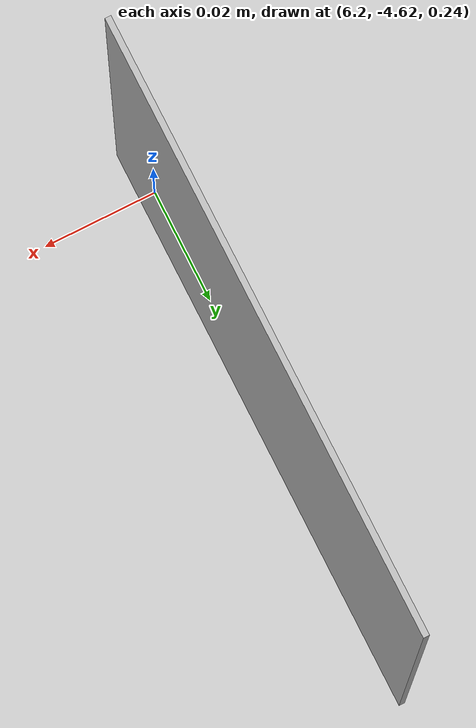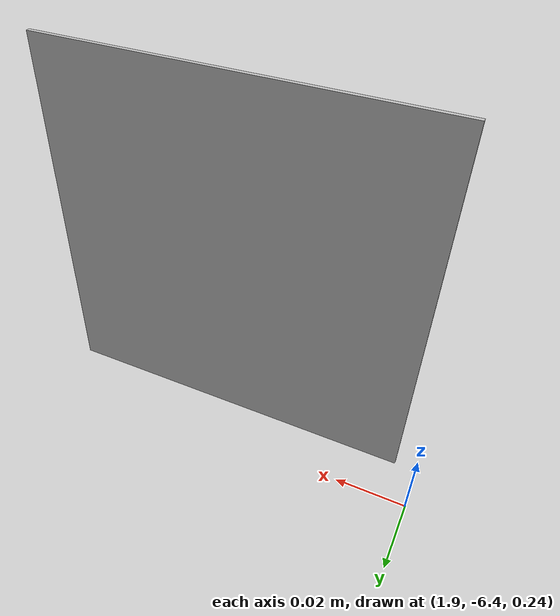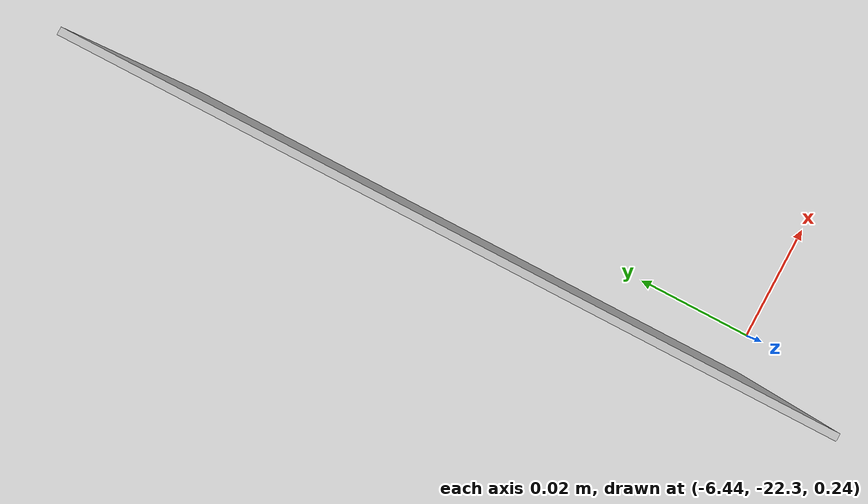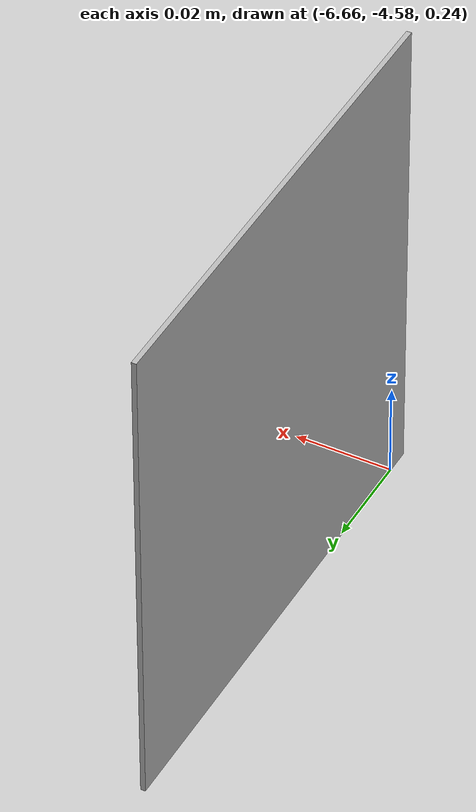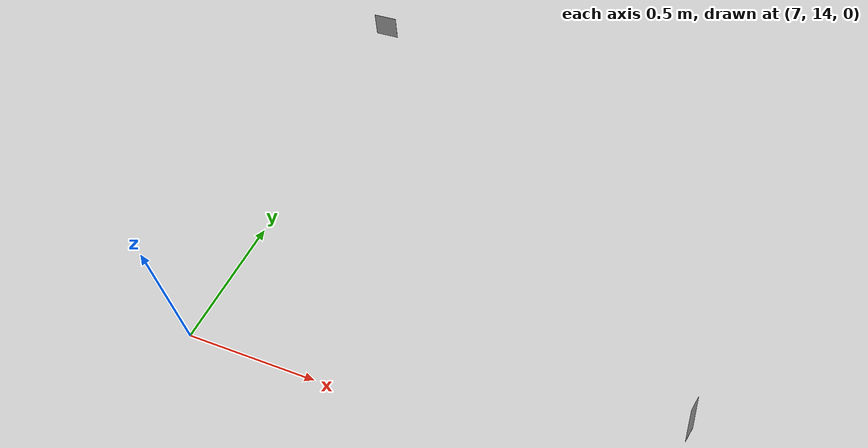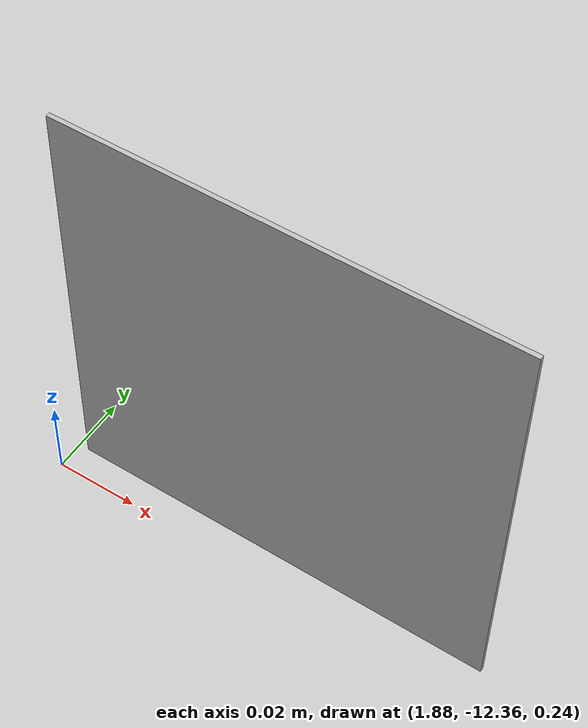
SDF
<sdf version="1.7">
 <world name="hospital">
  <light name="sun" type="directional">
   <pose>0 0 10 0 -0 0</pose>
   <diffuse>1 1 1 1</diffuse>
   <specular>0.5 0.5 0.5 1</specular>
   <attenuation>
    <range>2000</range>
    <constant>0.7</constant>
    <linear>0.005</linear>
    <quadratic>0.0005</quadratic>
   </attenuation>
   <direction>-0.5 0.1 -0.9</direction>
   <spot><inner_angle>0</inner_angle><outer_angle>0</outer_angle><falloff>0</falloff></spot>
  </light>
  <gravity>0 0 -9.8</gravity>
  <magnetic_field>6e-06 2.3e-05 -4.2e-05</magnetic_field>
  <atmosphere type="adiabatic"/>
  <physics type="ode">
   <max_step_size>0.001</max_step_size>
   <real_time_factor>1</real_time_factor>
   <real_time_update_rate>1000</real_time_update_rate>
  </physics>
  <scene><ambient>1 1 1 1</ambient><background>1 1 1 1</background><shadows>1</shadows></scene>
  <audio><device>default</device></audio>
  <spherical_coordinates>
   <surface_model>EARTH_WGS84</surface_model>
   <latitude_deg>0</latitude_deg>
   <longitude_deg>0</longitude_deg>
   <elevation>0</elevation>
   <heading_deg>0</heading_deg>
  </spherical_coordinates>
  <model name="qr_chambre1">
   <static>1</static>
   <link name="qr_chambre1_link">
    <pose>0 0 0.3 3.14159 1.57079 3.14159</pose>
    <visual name="visual_qr_chambre1">
     <cast_shadows>0</cast_shadows>
     <geometry><box><size>0.1 0.1 0.001</size></box></geometry>
     <material>
      <script>
       <uri>model://qr_chambre1/materials/scripts</uri>
       <uri>model://qr_chambre1/materials/textures</uri>
       <name>qr_chambre1/qr_chambre1</name>
      </script>
     </material>
    </visual>
    <collision name="collision_qr_chambre1"><geometry><box><size>0.1 0.1 0.001</size></box></geometry></collision>
   </link>
   <pose>8.7032 14.1614 -0 0 -0 0</pose>
  </model>
  <model name="qr_chambre2">
   <static>1</static>
   <link name="qr_chambre2_link">
    <pose>0 0 0.3 3.14159 1.57079 3.14159</pose>
    <visual name="visual_qr_chambre2">
     <cast_shadows>0</cast_shadows>
     <geometry><box><size>0.1 0.1 0.001</size></box></geometry>
     <material>
      <script>
       <uri>model://qr_chambre2/materials/scripts</uri>
       <uri>model://qr_chambre2/materials/textures</uri>
       <name>qr_chambre2/qr_chambre2</name>
      </script>
     </material>
    </visual>
    <collision name="collision_qr_chambre2"><geometry><box><size>0.1 0.1 0.001</size></box></geometry></collision>
   </link>
   <pose>8.70072 8.99884 -0 0 -0 0</pose>
  </model>
  <model name="qr_chambre3">
   <static>1</static>
   <link name="qr_chambre3_link">
    <pose>0 0 0.3 3.14159 1.57079 3.14159</pose>
    <visual name="visual_qr_chambre3">
     <cast_shadows>0</cast_shadows>
     <geometry><box><size>0.1 0.1 0.001</size></box></geometry>
     <material>
      <script>
       <uri>model://qr_chambre3/materials/scripts</uri>
       <uri>model://qr_chambre3/materials/textures</uri>
       <name>qr_chambre3/qr_chambre3</name>
      </script>
     </material>
    </visual>
    <collision name="collision_qr_chambre3"><geometry><box><size>0.1 0.1 0.001</size></box></geometry></collision>
   </link>
   <pose>6.20298 -4.57653 -0 0 -0 0</pose>
  </model>
  <model name="qr_chambre4">
   <static>1</static>
   <link name="qr_chambre4_link">
    <pose>0 0 0.3 3.14159 1.57079 3.14159</pose>
    <visual name="visual_qr_chambre4">
     <cast_shadows>0</cast_shadows>
     <geometry><box><size>0.1 0.1 0.001</size></box></geometry>
     <material>
      <script>
       <uri>model://qr_chambre4/materials/scripts</uri>
       <uri>model://qr_chambre4/materials/textures</uri>
       <name>qr_chambre4/qr_chambre4</name>
      </script>
     </material>
    </visual>
    <collision name="collision_qr_chambre4"><geometry><box><size>0.1 0.1 0.001</size></box></geometry></collision>
   </link>
   <pose>6.19839 -18.58 -0 0 -0 0</pose>
  </model>
  <model name="qr_chambre5">
   <static>1</static>
   <link name="qr_chambre5_link">
    <pose>0 0 0.3 3.14159 1.57079 3.14159</pose>
    <visual name="visual_qr_chambre5">
     <cast_shadows>0</cast_shadows>
     <geometry><box><size>0.1 0.1 0.001</size></box></geometry>
     <material>
      <script>
       <uri>model://qr_chambre5/materials/scripts</uri>
       <uri>model://qr_chambre5/materials/textures</uri>
       <name>qr_chambre5/qr_chambre5</name>
      </script>
     </material>
    </visual>
    <collision name="collision_qr_chambre5"><geometry><box><size>0.1 0.1 0.001</size></box></geometry></collision>
   </link>
   <pose>4.21649 -22.3571 0 0 -0 -1.56709</pose>
  </model>
  <model name="qr_SalledAttente">
   <static>1</static>
   <link name="qr_SalledAttente_link">
    <pose>0 0 0.3 3.14159 1.57079 3.14159</pose>
    <visual name="visual_qr_SalledAttente">
     <cast_shadows>0</cast_shadows>
     <geometry><box><size>0.1 0.1 0.001</size></box></geometry>
     <material>
      <script>
       <uri>model://qr_SalledAttente/materials/scripts</uri>
       <uri>model://qr_SalledAttente/materials/textures</uri>
       <name>qr_SalledAttente/qr_SalledAttente</name>
      </script>
     </material>
    </visual>
    <collision name="collision_qr_SalledAttente">
     <geometry><box><size>0.1 0.1 0.001</size></box></geometry>
    </collision>
   </link>
   <pose>-6.44662 -22.2505 0 0 -0 0</pose>
  </model>
  <model name="qr_chambre6">
   <static>1</static>
   <link name="qr_chambre6_link">
    <pose>0 0 0.3 3.14159 1.57079 3.14159</pose>
    <visual name="visual_qr_chambre6">
     <cast_shadows>0</cast_shadows>
     <geometry><box><size>0.1 0.1 0.001</size></box></geometry>
     <material>
      <script>
       <uri>model://qr_chambre6/materials/scripts</uri>
       <uri>model://qr_chambre6/materials/textures</uri>
       <name>qr_chambre6/qr_chambre6</name>
      </script>
     </material>
    </visual>
    <collision name="collision_qr_chambre6"><geometry><box><size>0.1 0.1 0.001</size></box></geometry></collision>
   </link>
   <pose>-6.67893 -18.5329 0.012667 0 -0 0</pose>
  </model>
  <model name="qr_chambre7">
   <static>1</static>
   <link name="qr_chambre7_link">
    <pose>0 0 0.3 3.14159 1.57079 3.14159</pose>
    <visual name="visual_qr_chambre7">
     <cast_shadows>0</cast_shadows>
     <geometry><box><size>0.1 0.1 0.001</size></box></geometry>
     <material>
      <script>
       <uri>model://qr_chambre7/materials/scripts</uri>
       <uri>model://qr_chambre7/materials/textures</uri>
       <name>qr_chambre7/qr_chambre7</name>
      </script>
     </material>
    </visual>
    <collision name="collision_qr_chambre7"><geometry><box><size>0.1 0.1 0.001</size></box></geometry></collision>
   </link>
   <pose>-6.66455 -4.5252 0 0 -0 0</pose>
  </model>
  <model name="qr_chambre8">
   <static>1</static>
   <link name="qr_chambre8_link">
    <pose>0 0 0.3 3.14159 1.57079 3.14159</pose>
    <visual name="visual_qr_chambre8">
     <cast_shadows>0</cast_shadows>
     <geometry><box><size>0.1 0.1 0.001</size></box></geometry>
     <material>
      <script>
       <uri>model://qr_chambre8/materials/scripts</uri>
       <uri>model://qr_chambre8/materials/textures</uri>
       <name>qr_chambre8/qr_chambre8</name>
      </script>
     </material>
    </visual>
    <collision name="collision_qr_chambre8"><geometry><box><size>0.1 0.1 0.001</size></box></geometry></collision>
   </link>
   <pose>-9.17677 9.13805 0 0 -0 0</pose>
  </model>
  <model name="qr_chambre9">
   <static>1</static>
   <link name="qr_chambre9_link">
    <pose>0 0 0.3 3.14159 1.57079 3.14159</pose>
    <visual name="visual_qr_chambre9">
     <cast_shadows>0</cast_shadows>
     <geometry><box><size>0.1 0.1 0.001</size></box></geometry>
     <material>
      <script>
       <uri>model://qr_chambre9/materials/scripts</uri>
       <uri>model://qr_chambre9/materials/textures</uri>
       <name>qr_chambre9/qr_chambre9</name>
      </script>
     </material>
    </visual>
    <collision name="collision_qr_chambre9"><geometry><box><size>0.1 0.1 0.001</size></box></geometry></collision>
   </link>
   <pose>-9.17619 13.8555 -0 0 -0 0</pose>
  </model>
  <model name="qr_SalledeStockage">
   <static>1</static>
   <link name="qr_SalledeStockage_link">
    <pose>0 0 0.3 3.14159 1.57079 3.14159</pose>
    <visual name="visual_qr_SalledeStockage">
     <cast_shadows>0</cast_shadows>
     <geometry><box><size>0.1 0.1 0.001</size></box></geometry>
     <material>
      <script>
       <uri>model://qr_SalledeStockage/materials/scripts</uri>
       <uri>model://qr_SalledeStockage/materials/textures</uri>
       <name>qr_SalledeStockage/qr_SalledeStockage</name>
      </script>
     </material>
    </visual>
    <collision name="collision_qr_SalledeStockage">
     <geometry><box><size>0.1 0.1 0.001</size></box></geometry>
    </collision>
   </link>
   <pose>-7.60088 15.5018 -0 0 0 -1.65181</pose>
  </model>
  <model name="qr_SalleConsultation1">
   <static>1</static>
   <link name="qr_SalleConsultation1_link">
    <pose>0 0 0.3 3.14159 1.57079 3.14159</pose>
    <visual name="visual_qr_SalleConsultation1">
     <cast_shadows>0</cast_shadows>
     <geometry><box><size>0.1 0.1 0.001</size></box></geometry>
     <material>
      <script>
       <uri>model://qr_SalleConsultation1/materials/scripts</uri>
       <uri>model://qr_SalleConsultation1/materials/textures</uri>
       <name>qr_SalleConsultation1/qr_SalleConsultation1</name>
      </script>
     </material>
    </visual>
    <collision name="collision_qr_SalleConsultation1">
     <geometry><box><size>0.1 0.1 0.001</size></box></geometry>
    </collision>
   </link>
   <pose>1.96157 3.64343 -0 0 -0 -1.56912</pose>
  </model>
  <model name="qr_SalleConsultation2">
   <static>1</static>
   <link name="qr_SalleConsultation2_link">
    <pose>0 0 0.3 3.14159 1.57079 3.14159</pose>
    <visual name="visual_qr_SalleConsultation2">
     <cast_shadows>0</cast_shadows>
     <geometry><box><size>0.1 0.1 0.001</size></box></geometry>
     <material>
      <script>
       <uri>model://qr_SalleConsultation2/materials/scripts</uri>
       <uri>model://qr_SalleConsultation2/materials/textures</uri>
       <name>qr_SalleConsultation2/qr_SalleConsultation2</name>
      </script>
     </material>
    </visual>
    <collision name="collision_qr_SalleConsultation2">
     <geometry><box><size>0.1 0.1 0.001</size></box></geometry>
    </collision>
   </link>
   <pose>-2.36647 3.6431 0 0 0 -1.59988</pose>
  </model>
  <model name="qr_Toilette1">
   <static>1</static>
   <link name="qr_Toilette1_link">
    <pose>0 0 0.3 3.14159 1.57079 3.14159</pose>
    <visual name="visual_qr_Toilette1">
     <cast_shadows>0</cast_shadows>
     <geometry><box><size>0.1 0.1 0.001</size></box></geometry>
     <material>
      <script>
       <uri>model://qr_Toilette1/materials/scripts</uri>
       <uri>model://qr_Toilette1/materials/textures</uri>
       <name>qr_Toilette1/qr_Toilette1</name>
      </script>
     </material>
    </visual>
    <collision name="collision_qr_Toilette1">
     <geometry><box><size>0.1 0.1 0.001</size></box></geometry>
    </collision>
   </link>
   <pose>1.9559 -6.4059 0 0 0 -1.57817</pose>
  </model>
  <model name="qr_Toilette2">
   <static>1</static>
   <link name="qr_Toilette2_link">
    <pose>0 0 0.3 3.14159 1.57079 3.14159</pose>
    <visual name="visual_qr_Toilette2">
     <cast_shadows>0</cast_shadows>
     <geometry><box><size>0.1 0.1 0.001</size></box></geometry>
     <material>
      <script>
       <uri>model://qr_Toilette2/materials/scripts</uri>
       <uri>model://qr_Toilette2/materials/textures</uri>
       <name>qr_Toilette2/qr_Toilette2</name>
      </script>
     </material>
    </visual>
    <collision name="collision_qr_Toilette2">
     <geometry><box><size>0.1 0.1 0.001</size></box></geometry>
    </collision>
   </link>
   <pose>-2.42829 -6.40618 0 0 0 -1.5735</pose>
  </model>
  <model name="qr_SalledeRadiologie">
   <static>1</static>
   <link name="qr_SalledeRadiologie_link">
    <pose>0 0 0.3 3.14159 1.57079 3.14159</pose>
    <visual name="visual_qr_SalledeRadiologie">
     <cast_shadows>0</cast_shadows>
     <geometry><box><size>0.1 0.1 0.001</size></box></geometry>
     <material>
      <script>
       <uri>model://qr_SalledeRadiologie/materials/scripts</uri>
       <uri>model://qr_SalledeRadiologie/materials/textures</uri>
       <name>qr_SalledeRadiologie/qr_SalledeRadiologie</name>
      </script>
     </material>
    </visual>
    <collision name="collision_qr_SalledeRadiologie">
     <geometry><box><size>0.1 0.1 0.001</size></box></geometry>
    </collision>
   </link>
   <pose>1.93739 -12.3584 0 0 0 -1.57366</pose>
  </model>
  <model name="qr_SalledeStockage_0">
   <static>1</static>
   <link name="qr_SalledeStockage_link">
    <pose>0 0 0.3 3.14159 1.57079 3.14159</pose>
    <visual name="visual_qr_SalledeStockage">
     <cast_shadows>0</cast_shadows>
     <geometry><box><size>0.1 0.1 0.001</size></box></geometry>
     <material>
      <script>
       <uri>model://qr_SalledeStockage/materials/scripts</uri>
       <uri>model://qr_SalledeStockage/materials/textures</uri>
       <name>qr_SalledeStockage/qr_SalledeStockage</name>
      </script>
     </material>
    </visual>
    <collision name="collision_qr_SalledeStockage">
     <geometry><box><size>0.1 0.1 0.001</size></box></geometry>
    </collision>
   </link>
   <pose>7.09159 15.5153 -0 0 -0 1.58541</pose>
  </model>
 </world>
</sdf>
